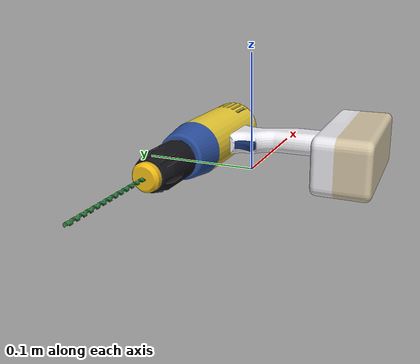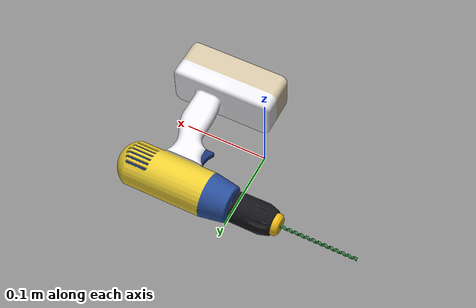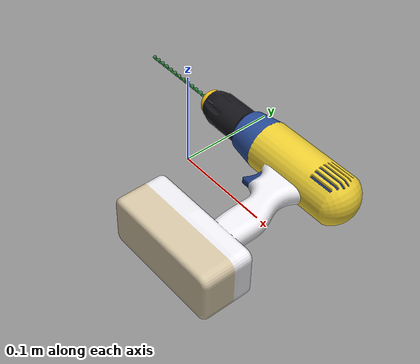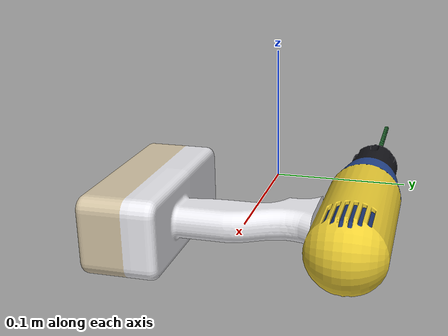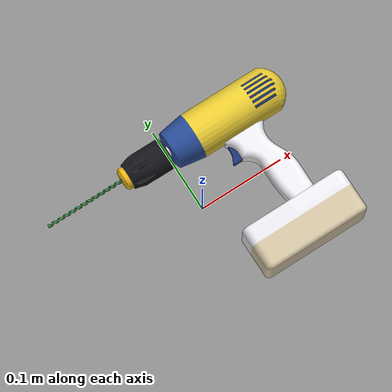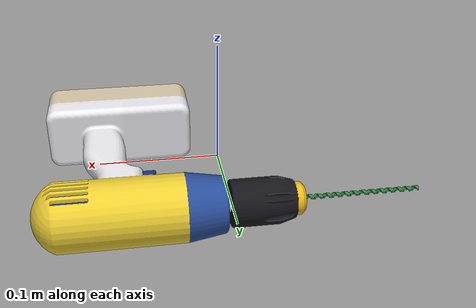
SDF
<?xml version="1.0"?>
<sdf version="1.6">
  <model name="pcb_test_fixture">
    <link name="link">
      <inertial><mass>3.60</mass><inertia><ixx>0.02400</ixx><ixy>0</ixy><ixz>0</ixz><iyy>0.03840</iyy><iyz>0</iyz><izz>0.04640</izz></inertia></inertial>
      <collision name="collision"><pose>0 0 -0.0276 0 0 0</pose><geometry><mesh><uri>model://pcb_test_fixture/meshes/drill.dae</uri><scale>2 2 2</scale></mesh></geometry><surface><friction><ode><mu>1.0</mu><mu2>1.0</mu2></ode></friction><contact><ode><kp>1e6</kp><kd>1.0</kd><min_depth>0.001</min_depth><max_vel>0.01</max_vel></ode></contact></surface></collision>
      <visual name="imported_tool_mesh"><pose>0 0 -0.0276 0 0 0</pose><geometry><mesh><uri>model://pcb_test_fixture/meshes/drill.dae</uri><scale>2 2 2</scale></mesh></geometry></visual>
    </link>
  </model>
</sdf>
